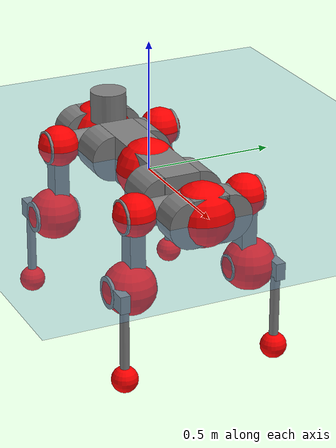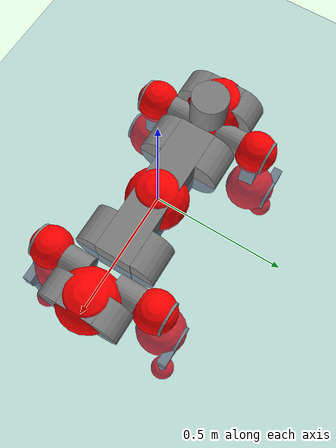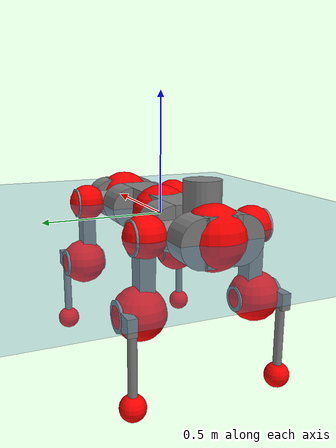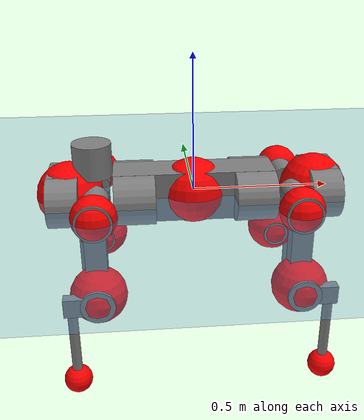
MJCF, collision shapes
<mujoco model="anymal_c">
  <compiler angle="radian" assetdir="assets" balanceinertia="true" inertiafromgeom="false"/>

  <option timestep="0.005" density="1.2" viscosity="2e-05"/>

  <size nkey="1"/>

  <visual>
    <quality shadowsize="8192"/>
    <map shadowclip="0.5"/>
  </visual>

  <default>
    <default class="/">
      <material specular="0" shininess="0.25"/>
      <geom contype="0" conaffinity="0" group="1" solref="-1000 -80"/>
      <site size="0.01 0.005 0.005" group="5"/>
      <general forcelimited="true" forcerange="-80 80" biastype="affine" gainprm="80" biasprm="0 -80 -2"/>
      <default class="anymal_c">
        <joint armature="0.01" damping="0.01" frictionloss="0.1"/>
        <default class="visual">
          <geom type="mesh" group="2"/>
          <default class="visual_zflip"/>
        </default>
        <default class="collision">
          <geom type="cylinder" group="3"/>
          <default class="foot">
            <geom size="0.03 0 0" type="sphere" condim="6" priority="1" friction="0.8 0.02 0.01" solimp="0.015 1 0.03"/>
          </default>
        </default>
      </default>
      <default class="reward_collision_sphere">
        <geom group="5" rgba="1 0 0 1"/>
      </default>
    </default>
  </default>

  <asset>
    <texture type="skybox" colorspace="auto" name="//unnamed_texture_0" builtin="gradient" rgb1="0.95 0.95 0.95" rgb2="0.95 0.95 0.95" width="100" height="600"/>
    <texture type="2d" colorspace="auto" name="texplane" builtin="checker" rgb1="0.345 0.575 0.748" rgb2="0.345 0.575 0.748" markrgb="1 1 1" width="512" height="512"/>
    <texture type="2d" colorspace="linear" name="base" file="base.png"/>
    <texture type="2d" colorspace="linear" name="top_shell" file="top_shell.png"/>
    <texture type="2d" colorspace="linear" name="bottom_shell" file="bottom_shell.png"/>
    <texture type="2d" colorspace="linear" name="remote" file="remote.png"/>
    <texture type="2d" colorspace="linear" name="hatch" file="hatch.png"/>
    <texture type="2d" colorspace="linear" name="handle" file="handle.png"/>
    <texture type="2d" colorspace="linear" name="face" file="face.png"/>
    <texture type="2d" colorspace="linear" name="battery" file="battery.png"/>
    <texture type="2d" colorspace="linear" name="lidar_cage" file="lidar_cage.png"/>
    <texture type="2d" colorspace="linear" name="depth_camera" file="depth_camera.png"/>
    <texture type="2d" colorspace="linear" name="wide_angle_camera" file="wide_angle_camera.png"/>
    <texture type="2d" colorspace="linear" name="lidar" file="lidar.png"/>
    <texture type="2d" colorspace="linear" name="drive" file="drive.png"/>
    <texture type="2d" colorspace="linear" name="hip_l" file="hip_l.png"/>
    <texture type="2d" colorspace="linear" name="shank_l" file="shank_l.png"/>
    <texture type="2d" colorspace="linear" name="foot" file="foot.png"/>
    <texture type="2d" colorspace="linear" name="thigh" file="thigh.png"/>
    <texture type="2d" colorspace="linear" name="shank_r" file="shank_r.png"/>
    <texture type="2d" colorspace="linear" name="hip_r" file="hip_r.png"/>
    <material name="MatPlane" class="/" texture="texplane" texuniform="true" texrepeat="2 2" specular="0.9" shininess="0.5"/>
    <material name="black_plastic" class="/" rgba="0.007 0.007 0.007 1"/>
    <material name="green" class="/" rgba="0.052 0.178 0.033 1"/>
    <material name="red" class="/" rgba="0.178 0.006 0.005 1"/>
    <material name="yellow" class="/" rgba="0.178 0.119 0.006 1"/>
    <material name="lwl" class="/" rgba="0.8 0.8 0.8 1"/>
    <material name="base" class="/" texture="base"/>
    <material name="top_shell" class="/" texture="top_shell"/>
    <material name="bottom_shell" class="/" texture="bottom_shell"/>
    <material name="hip_l" class="/" texture="hip_l"/>
    <material name="thigh" class="/" texture="thigh"/>
    <material name="shank_l" class="/" texture="shank_l"/>
    <material name="foot" class="/" texture="foot"/>
    <material name="hip_r" class="/" texture="hip_r"/>
    <material name="shank" class="/" texture="shank_r"/>
    <material name="hatch" class="/" texture="hatch"/>
    <material name="remote" class="/" texture="remote"/>
    <material name="handle" class="/" texture="handle"/>
    <material name="face" class="/" texture="face"/>
    <material name="depth_camera" class="/" texture="depth_camera"/>
    <material name="wide_angle_camera" class="/" texture="wide_angle_camera"/>
    <material name="battery" class="/" texture="battery"/>
    <material name="lidar_cage" class="/" texture="lidar_cage"/>
    <material name="lidar" class="/" texture="lidar"/>
    <material name="drive" class="/" texture="drive"/>
    <mesh name="base_0" class="/" file="base_0.obj"/>
    <mesh name="base_1" class="/" file="base_1.obj"/>
    <mesh name="base_2" class="/" file="base_2.obj"/>
    <mesh name="base_3" class="/" file="base_3.obj"/>
    <mesh name="base_4" class="/" file="base_4.obj"/>
    <mesh name="base_5" class="/" file="base_5.obj"/>
    <mesh name="top_shell" class="/" file="top_shell.obj"/>
    <mesh name="bottom_shell" class="/" file="bottom_shell.obj"/>
    <mesh name="remote" class="/" file="remote.obj"/>
    <mesh name="handle" class="/" file="handle.obj"/>
    <mesh name="face" class="/" file="face.obj"/>
    <mesh name="wide_angle_camera" class="/" file="wide_angle_camera.obj"/>
    <mesh name="depth_camera" class="/" file="depth_camera.obj"/>
    <mesh name="battery" class="/" file="battery.obj"/>
    <mesh name="lidar_cage" class="/" file="lidar_cage.obj"/>
    <mesh name="lidar" class="/" file="lidar.obj"/>
    <mesh name="drive" class="/" file="drive.obj"/>
    <mesh name="hip_l" class="/" file="hip_l.obj"/>
    <mesh name="thigh" class="/" file="thigh.obj"/>
    <mesh name="shank_l" class="/" file="shank_l.obj"/>
    <mesh name="foot" class="/" file="foot.obj"/>
    <mesh name="hip_r" class="/" file="hip_r.obj"/>
    <mesh name="hatch" class="/" file="hatch.obj"/>
    <mesh name="shank_r" class="/" file="shank_r.obj"/>
  </asset>

  <worldbody>
    <geom name="floor" class="/" size="100 100 0.125" type="plane" group="0" material="MatPlane"/>
    <light name="toplight_shadow" class="/" pos="0 0 5" dir="0.0990148 0.0990148 -0.990148" type="directional" ambient="0.04 0.04 0.04" diffuse="0.55 0.55 0.55" specular="0.12 0.12 0.12"/>
    <light name="toplight_fill" class="/" pos="0 0 5" dir="0.0990148 0.0990148 -0.990148" type="directional" castshadow="false" ambient="0.04 0.04 0.04" diffuse="0.3 0.3 0.3" specular="0.08 0.08 0.08"/>
    <body name="trunk" childclass="anymal_c" pos="0.000293648 -0.00272037 -0.00178429" quat="0.999999 0.000828207 2.01766e-05 0.00107156">
      <inertial pos="-0.000590248 -0.000433818 0.0509611" quat="0.498406 0.491956 0.51097 0.498479" mass="20.1547" diaginertia="0.625528 0.754858 0.212454"/>
      <joint name="//unnamed_joint_0" type="free" armature="0" damping="0" frictionloss="0"/>
      <geom name="//unnamed_geom_1" class="visual" material="green" mesh="base_0"/>
      <geom name="//unnamed_geom_2" class="visual" material="yellow" mesh="base_1"/>
      <geom name="//unnamed_geom_3" class="visual" material="red" mesh="base_2"/>
      <geom name="//unnamed_geom_4" class="visual" material="black_plastic" mesh="base_3"/>
      <geom name="//unnamed_geom_5" class="visual" material="lwl" mesh="base_4"/>
      <geom name="//unnamed_geom_6" class="visual" material="base" mesh="base_5"/>
      <geom name="trunk_1" class="collision" size="0.292262 0.0705461 0.0907021" type="box"/>
      <geom name="trunk_2" class="collision" size="0.0907021 0.0730656" pos="0.216878 0.0724766 0" quat="0.707107 0 0.707107 0"/>
      <geom name="trunk_3" class="collision" size="0.0907021 0.0730656" pos="-0.216878 0.0724766 0" quat="0.707107 0 0.707107 0"/>
      <geom name="trunk_4" class="collision" size="0.0907021 0.0730656" pos="0.216878 -0.0724766 0" quat="0.707107 0 0.707107 0"/>
      <geom name="trunk_5" class="collision" size="0.0907021 0.0730656" pos="-0.216878 -0.0724766 0" quat="0.707107 0 0.707107 0"/>
      <geom name="//unnamed_geom_12" class="visual" material="top_shell" mesh="top_shell"/>
      <geom name="//unnamed_geom_13" class="visual" material="bottom_shell" mesh="bottom_shell"/>
      <geom name="//unnamed_geom_14" class="visual" material="remote" mesh="remote"/>
      <geom name="//unnamed_geom_15" class="visual" material="handle" mesh="handle"/>
      <geom name="//unnamed_geom_16" class="visual" pos="0.413315 0 0" quat="1 0 0 0" material="face" mesh="face"/>
      <geom name="trunk_6" class="collision" size="0.0554291 0.0705461 0.0907021" pos="0.468157 0 0" type="box"/>
      <geom name="//unnamed_geom_18" class="collision" size="0.0907021 0.0554291" pos="0.468157 0.0724766 0" quat="0.707107 0 0.707107 0"/>
      <geom name="//unnamed_geom_19" class="collision" size="0.0907021 0.0554291" pos="0.468157 -0.0724766 0" quat="0.707107 0 0.707107 0"/>
      <geom name="//unnamed_geom_20" class="visual" pos="0.46033 0 -0.0288863" quat="0.965926 0 0.258819 0" material="depth_camera" mesh="depth_camera"/>
      <geom name="//unnamed_geom_21" class="visual" pos="0.511533 0 0.0148335" material="wide_angle_camera" mesh="wide_angle_camera"/>
      <geom name="//unnamed_geom_22" class="visual_zflip" pos="-0.413315 0 0" quat="0 0 0 1" material="face" mesh="face"/>
      <geom name="trunk_7" class="collision" size="0.0554291 0.0705461 0.0907021" pos="-0.468157 0 0" quat="0 0 0 1" type="box"/>
      <geom name="//unnamed_geom_24" class="collision" size="0.0907021 0.0554291" pos="-0.468157 -0.0724766 0" quat="0 -0.707107 0 0.707107"/>
      <geom name="//unnamed_geom_25" class="collision" size="0.0907021 0.0554291" pos="-0.468157 0.0724766 0" quat="0 -0.707107 0 0.707107"/>
      <geom name="//unnamed_geom_26" class="visual" pos="-0.46033 0 -0.0288863" quat="0 -0.258819 0 0.965926" material="depth_camera" mesh="depth_camera"/>
      <geom name="//unnamed_geom_27" class="visual_zflip" pos="-0.511533 0 0.0148335" quat="0 0 0 1" material="wide_angle_camera" mesh="wide_angle_camera"/>
      <geom name="//unnamed_geom_28" class="visual" material="battery" mesh="battery"/>
      <geom name="//unnamed_geom_29" class="visual" pos="0 0.0796667 0.0288327" quat="0.683013 -0.183013 0.183013 0.683013" material="depth_camera" mesh="depth_camera"/>
      <geom name="//unnamed_geom_30" class="visual" pos="0 -0.0796667 0.0288327" quat="0.683013 0.183013 0.183013 -0.683013" material="depth_camera" mesh="depth_camera"/>
      <geom name="//unnamed_geom_31" class="visual" pos="-0.362959 0 0.07283" quat="1 0 0 0" material="lidar_cage" mesh="lidar_cage"/>
      <geom name="trunk_8" class="collision" size="0.0705461 0.0604681" pos="-0.362959 0 0.132283"/>
      <geom name="//unnamed_geom_33" class="visual" pos="-0.362959 1.50236e-05 0.140904" quat="0.707107 0 0 -0.707107" material="lidar" mesh="lidar"/>
      <geom name="//unnamed_geom_34" class="visual" pos="0.299042 0.107664 7.67575e-10" quat="0.258819 0.965926 0 0" material="drive" mesh="drive"/>
      <geom name="//unnamed_geom_35" class="visual" pos="0.299042 -0.107664 -7.67575e-10" quat="0.258819 -0.965926 0 0" material="drive" mesh="drive"/>
      <geom name="//unnamed_geom_36" class="visual" pos="-0.299042 0.107664 -7.67575e-10" quat="0 0 0.965926 -0.258819" material="drive" mesh="drive"/>
      <geom name="//unnamed_geom_37" class="visual" pos="-0.299042 -0.107664 7.67575e-10" quat="0 0 -0.965926 -0.258819" material="drive" mesh="drive"/>
      <geom name="//unnamed_geom_38" class="visual" pos="0.115668 0 0.0723345" quat="1 0 0 0" material="hatch" mesh="hatch"/>
      <geom name="//unnamed_geom_39" class="reward_collision_sphere" size="0.120936"/>
      <geom name="//unnamed_geom_40" class="reward_collision_sphere" size="0.120936" pos="0.448713 0 0"/>
      <geom name="//unnamed_geom_41" class="reward_collision_sphere" size="0.120936" pos="-0.448713 0 0"/>
      <site name="imu" pos="0.251955 0.00351985 0.0407365" size="0.010078"/>
      <camera name="track" pos="0 -2.07076 0" quat="0.707107 0.707107 0 0" mode="trackcom"/>
      <camera name="ego_camera" pos="0.448713 0 -0.0396354" quat="-0.5 -0.5 0.5 0.5"/>
      <body name="LF_HIP" pos="0.298685 0.108594 0.00191007" quat="0.259152 0.965836 -5.86237e-05 -0.00062833">
        <inertial pos="0.0567437 -0.0177287 -0.00768047" quat="-0.126165 0.709942 -0.134986 0.679591" mass="2.845" diaginertia="0.00589334 0.00570167 0.00320754"/>
        <joint name="LF_HAA" pos="0 0 0" axis="0.999896 -0.0139347 0.00382711" stiffness="0.00417198" range="-0.774814 0.482467" armature="0.0105471" damping="0.00447189" frictionloss="0.100327"/>
        <geom name="//unnamed_geom_42" class="visual" pos="0 4.5153e-05 -7.41634e-06" quat="0.258819 -0.965926 0 0" material="hip_l" mesh="hip_l"/>
        <geom name="//unnamed_geom_43" class="visual" pos="0.0597287 -0.0728617 -0.0417376" quat="0.183013 -0.683013 0.683013 0.183013" material="drive" mesh="drive"/>
        <geom name="//unnamed_geom_44" class="collision" size="0.0503901 0.0705461" pos="0.0597287 -0.0123829 -0.00684205" quat="-0.353553 -0.612372 0.612372 -0.353553"/>
        <body name="LF_THIGH" pos="0.0620207 -0.0723927 -0.0395706" quat="0.183013 -0.682957 0.683063 0.183031">
          <inertial pos="0.0310645 0.000231122 -0.243458" quat="0.993511 -0.0161719 -0.0798602 0.0793556" mass="3.25856" diaginertia="0.0292793 0.0358945 0.0040114"/>
          <joint name="LF_HFE" pos="0 0 0" axis="0.999912 -0.0131227 -0.00180681" stiffness="0.0136954" range="-3.19686 3.11698" armature="0.0102524" damping="0.00697168" frictionloss="0.0866024"/>
          <geom name="//unnamed_geom_45" class="visual" pos="-0.000760834 -1.1989e-06 0" quat="0.707107 0 0 -0.707107" material="thigh" mesh="thigh"/>
          <geom name="//unnamed_geom_46" class="collision" size="0.0655071 0.0403121" pos="0.0398856 0 0" quat="0.5 0.5 -0.5 -0.5"/>
          <geom name="//unnamed_geom_47" class="collision" size="0.0377926 0.030234 0.142416" pos="0.0299142 0 -0.140026" quat="0.707107 0 0 -0.707107" type="box"/>
          <geom name="//unnamed_geom_48" class="visual" pos="0.100013 0 -0.282402" quat="1 0 0 0" material="drive" mesh="drive"/>
          <geom name="//unnamed_geom_49" class="collision" size="0.0503901 0.0705461" pos="0.0302134 0 -0.282402" quat="0.707107 0 0.707107 0"/>
          <geom name="//unnamed_geom_50" class="reward_collision_sphere" size="0.0806241" pos="0.0249285 0 0"/>
          <body name="LF_SHANK" pos="0.100248 0.000291812 -0.281713" quat="1 -0.000159956 2.31721e-05 -0.00046217">
            <inertial pos="0.00390014 -0.0661564 -0.0821135" quat="0.993687 -0.107535 0.00101905 -0.0319464" mass="0.596124" diaginertia="0.00965089 0.0107597 0.00104186"/>
            <joint name="LF_KFE" pos="0 0 0" axis="0.999983 0.00568011 -0.00161223" stiffness="0.00900854" range="-3.13644 3.1849" armature="0.00855196" damping="0" frictionloss="0.110494"/>
            <geom name="//unnamed_geom_51" class="visual" pos="-0.000248091 -0.00132284 0" quat="0.707107 0 0 -0.707107" material="shank_l" mesh="shank_l"/>
            <geom name="LF_kfe_act" class="collision" size="0.0604681 0.020156" pos="0.0199428 0 0" quat="0.5 0.5 -0.5 -0.5"/>
            <geom name="//unnamed_geom_53" class="collision" size="0.0579476 0.0340133 0.0191482" pos="0.0199428 -0.0595334 0" quat="0.5 0.5 -0.5 -0.5" type="box"/>
            <geom name="//unnamed_geom_54" class="visual" pos="0.0130127 -0.091488 -0.334889" quat="0.382683 0 0 -0.92388" material="foot" mesh="foot"/>
            <geom name="LF_calf" class="collision" size="0.0176365 0.142354" pos="0.0130127 -0.0910617 -0.167445" quat="0.707107 0 0 -0.707107"/>
            <geom name="LF_foot" class="foot" size="0.0277888" pos="0.0130127 -0.0910617 -0.312594" quat="0.707107 0 0 -0.707107"/>
            <geom name="//unnamed_geom_57" class="reward_collision_sphere" size="0.10078" pos="-0.049857 0 0"/>
            <geom name="//unnamed_geom_58" class="reward_collision_sphere" size="0.0503901" pos="0.0130127 -0.0910617 -0.312594"/>
            <site name="LF_foot" class="foot" pos="0.0130127 -0.0910617 -0.312594" quat="0.707107 0 0 -0.707107" size="0.010078"/>
          </body>
        </body>
      </body>
      <body name="RF_HIP" pos="0.298893 -0.110926 0.00214963" quat="0.258544 -0.965999 -0.000498081 -0.000415166">
        <inertial pos="0.0569897 0.0188238 -0.0107494" quat="0.133404 0.674935 0.125657 0.714757" mass="2.74932" diaginertia="0.00555827 0.00586393 0.00320878"/>
        <joint name="RF_HAA" pos="0 0 0" axis="0.999873 -0.0146431 -0.00631896" stiffness="0.000984257" range="-0.510489 0.757231" armature="0.0087812" damping="0.0017168" frictionloss="0.108527"/>
        <geom name="//unnamed_geom_59" class="visual" pos="0 -4.51526e-05 -7.41632e-06" quat="0.258819 0.965926 0 0" material="hip_r" mesh="hip_r"/>
        <geom name="//unnamed_geom_60" class="visual" pos="0.0597287 0.0728617 -0.0417376" quat="0.183013 0.683013 0.683013 -0.183013" material="drive" mesh="drive"/>
        <geom name="//unnamed_geom_61" class="collision" size="0.0503901 0.0705461" pos="0.0597287 0.0123829 -0.00684205" quat="-0.353553 0.612372 0.612372 0.353553"/>
        <body name="RF_THIGH" pos="0.0576153 0.0730637 -0.0419992" quat="0.18286 0.682992 0.68322 -0.182468">
          <inertial pos="0.0335841 -0.00284865 -0.242276" quat="0.992314 -0.0072681 -0.0755135 0.0977614" mass="3.19512" diaginertia="0.0287098 0.035515 0.0039906"/>
          <joint name="RF_HFE" pos="0 0 0" axis="0.999958 -0.00805154 -0.00437309" range="-3.12999 3.18149" armature="0.00940219" damping="0.0180055" frictionloss="0.0866623"/>
          <geom name="//unnamed_geom_62" class="visual" pos="-0.000760834 -1.1989e-06 0" quat="0.707107 0 0 -0.707107" material="thigh" mesh="thigh"/>
          <geom name="//unnamed_geom_63" class="collision" size="0.0655071 0.0403121" pos="0.0398856 0 0" quat="0.5 0.5 0.5 0.5"/>
          <geom name="//unnamed_geom_64" class="collision" size="0.0377926 0.030234 0.142416" pos="0.0299142 0 -0.140026" quat="0.707107 0 0 0.707107" type="box"/>
          <geom name="//unnamed_geom_65" class="visual" pos="0.100013 0 -0.282402" quat="1 0 0 0" material="drive" mesh="drive"/>
          <geom name="//unnamed_geom_66" class="collision" size="0.0503901 0.0705461" pos="0.0302134 0 -0.282402" quat="0.707107 0 0.707107 0"/>
          <geom name="//unnamed_geom_67" class="reward_collision_sphere" size="0.0806241" pos="0.0249285 0 0"/>
          <body name="RF_SHANK" pos="0.0978357 0.00266974 -0.282183" quat="1 -0.00031111 -0.000137163 -0.000101515">
            <inertial pos="0.00278222 0.0661612 -0.0807442" quat="0.993365 0.110037 -0.0100471 0.0318929" mass="0.603579" diaginertia="0.00975849 0.0113906 0.00103506"/>
            <joint name="RF_KFE" pos="0 0 0" axis="0.999999 0.000436357 -0.00157348" range="-3.08624 3.16365" armature="0.0101449" damping="0.00514524" frictionloss="0.08956"/>
            <geom name="//unnamed_geom_68" class="visual" pos="-0.00024809 0.00132283 0" quat="0.707107 0 0 0.707107" material="shank" mesh="shank_r"/>
            <geom name="RF_kfe_act" class="collision" size="0.0604681 0.020156" pos="0.0199428 0 0" quat="0.5 0.5 0.5 0.5"/>
            <geom name="//unnamed_geom_70" class="collision" size="0.0579476 0.0340133 0.0191482" pos="0.0199428 0.0595334 0" quat="0.5 0.5 0.5 0.5" type="box"/>
            <geom name="//unnamed_geom_71" class="visual" pos="0.0130126 0.091488 -0.334889" quat="0.382683 0 0 0.92388" material="foot" mesh="foot"/>
            <geom name="RF_calf" class="collision" size="0.0176365 0.142354" pos="0.0130127 0.0910617 -0.167445" quat="0.707107 0 0 0.707107"/>
            <geom name="RF_foot" class="foot" size="0.0306374" pos="0.0130127 0.0910617 -0.312594" quat="0.707107 0 0 0.707107"/>
            <geom name="//unnamed_geom_74" class="reward_collision_sphere" size="0.10078" pos="-0.049857 0 0"/>
            <geom name="//unnamed_geom_75" class="reward_collision_sphere" size="0.0503901" pos="0.0130127 0.0910617 -0.312594"/>
            <site name="RF_foot" class="foot" pos="0.0130127 0.0910617 -0.312594" quat="0.707107 0 0 0.707107" size="0.010078"/>
          </body>
        </body>
      </body>
      <body name="LH_HIP" pos="-0.298568 0.110948 0.00341802" quat="0.000577161 0.000287046 0.965895 -0.258934">
        <inertial pos="0.0571614 0.0146343 -0.00552992" quat="0.131559 0.678579 0.13099 0.710679" mass="2.76017" diaginertia="0.00557081 0.00548564 0.00315794"/>
        <joint name="LH_HAA" pos="0 0 0" axis="0.99995 -0.00888819 -0.00456819" stiffness="0.00485892" range="-0.454071 0.682145" armature="0.00962998" damping="0.0134485" frictionloss="0.112717"/>
        <geom name="//unnamed_geom_76" class="visual" pos="0 -4.51526e-05 -7.41632e-06" quat="-0.258819 -0.965926 0 0" material="hip_r" mesh="hip_r"/>
        <geom name="//unnamed_geom_77" class="visual" pos="0.0597287 0.0728617 -0.0417376" quat="0.183013 0.683013 0.683013 -0.183013" material="drive" mesh="drive"/>
        <geom name="//unnamed_geom_78" class="collision" size="0.0503901 0.0705461" pos="0.0597287 0.0123829 -0.00684205" quat="-0.353553 0.612372 0.612372 0.353553"/>
        <body name="LH_THIGH" pos="0.0592697 0.072303 -0.0416086" quat="0.182883 0.682966 0.683226 -0.182521">
          <inertial pos="0.0298511 -0.000288568 -0.241128" quat="0.992098 0.00388306 -0.0801827 0.0964238" mass="3.12913" diaginertia="0.0288405 0.0369172 0.00408535"/>
          <joint name="LH_HFE" pos="0 0 0" axis="1 -0.000272862 9.91786e-05" range="-3.13482 3.16025" armature="0.0114316" damping="0.0215026" frictionloss="0.0865663"/>
          <geom name="//unnamed_geom_79" class="visual" pos="-0.000760834 -1.1989e-06 0" quat="0.707107 0 0 -0.707107" material="thigh" mesh="thigh"/>
          <geom name="//unnamed_geom_80" class="collision" size="0.0655071 0.0403121" pos="0.0398856 0 0" quat="0.5 0.5 -0.5 -0.5"/>
          <geom name="//unnamed_geom_81" class="collision" size="0.0377926 0.030234 0.142416" pos="0.0299142 0 -0.140026" quat="0.707107 0 0 -0.707107" type="box"/>
          <geom name="//unnamed_geom_82" class="visual" pos="0.100013 0 -0.282402" quat="1 0 0 0" material="drive" mesh="drive"/>
          <geom name="//unnamed_geom_83" class="collision" size="0.0503901 0.0705461" pos="0.0302134 0 -0.282402" quat="0.707107 0 0.707107 0"/>
          <geom name="//unnamed_geom_84" class="reward_collision_sphere" size="0.0806241" pos="0.0249285 0 0"/>
          <body name="LH_SHANK" pos="0.0978935 0.000895467 -0.279414" quat="0.999999 -0.000882213 0.000908244 -0.000234264">
            <inertial pos="0.00569319 0.0654033 -0.0789566" quat="0.993506 0.111197 -0.00218254 0.0240155" mass="0.589338" diaginertia="0.00969896 0.0106506 0.00103861"/>
            <joint name="LH_KFE" pos="0 0 0" axis="1 -0.000109834 -6.86471e-05" stiffness="0.00369685" range="-3.1317 3.15005" armature="0.010179" damping="0.0201009" frictionloss="0.0868194"/>
            <geom name="//unnamed_geom_85" class="visual" pos="-0.00024809 0.00132283 0" quat="-0.707107 0 0 -0.707107" material="shank" mesh="shank_r"/>
            <geom name="LH_kfe_act" class="collision" size="0.0604681 0.020156" pos="0.0199428 0 0" quat="0.5 0.5 -0.5 -0.5"/>
            <geom name="//unnamed_geom_87" class="collision" size="0.0579476 0.0340133 0.0191482" pos="0.0199428 0.0595334 0" quat="0.5 0.5 -0.5 -0.5" type="box"/>
            <geom name="//unnamed_geom_88" class="visual" pos="0.0130126 0.091488 -0.334889" quat="-0.382683 0 0 -0.92388" material="foot" mesh="foot"/>
            <geom name="LH_calf" class="collision" size="0.0176365 0.142354" pos="0.0130127 0.0910617 -0.167445" quat="0.707107 0 0 -0.707107"/>
            <geom name="LH_foot" class="foot" size="0.0308513" pos="0.0130127 0.0910617 -0.312594" quat="0.707107 0 0 -0.707107"/>
            <geom name="//unnamed_geom_91" class="reward_collision_sphere" size="0.10078" pos="-0.049857 0 0"/>
            <geom name="//unnamed_geom_92" class="reward_collision_sphere" size="0.0503901" pos="0.0130127 0.0910617 -0.312594"/>
            <site name="LH_foot" class="foot" pos="0.0130127 0.0910617 -0.312594" quat="0.707107 0 0 -0.707107" size="0.010078"/>
          </body>
        </body>
      </body>
      <body name="RH_HIP" pos="-0.299348 -0.105289 0.000412474" quat="8.08037e-06 -3.48457e-07 -0.965922 -0.258833">
        <inertial pos="0.0555143 -0.0176668 -0.00823871" quat="-0.12802 0.709767 -0.135273 0.67937" mass="2.75192" diaginertia="0.00556618 0.00577525 0.00302409"/>
        <joint name="RH_HAA" pos="0 0 0" axis="0.999993 0.000870092 -0.00364087" stiffness="0.00598218" range="-0.737791 0.545656" armature="0.0106981" damping="0.00881363" frictionloss="0.114971"/>
        <geom name="//unnamed_geom_93" class="visual" pos="0 4.5153e-05 -7.41634e-06" quat="-0.258819 0.965926 0 0" material="hip_l" mesh="hip_l"/>
        <geom name="//unnamed_geom_94" class="visual" pos="0.0597287 -0.0728617 -0.0417376" quat="-0.183013 0.683013 -0.683013 -0.183013" material="drive" mesh="drive"/>
        <geom name="//unnamed_geom_95" class="collision" size="0.0503901 0.0705461" pos="0.0597287 -0.0123829 -0.00684205" quat="0.353553 0.612372 -0.612372 0.353553"/>
        <body name="RH_THIGH" pos="0.0568746 -0.0724837 -0.0422431" quat="-0.184033 0.682945 -0.682733 -0.183283">
          <inertial pos="0.031187 -0.00247465 -0.242258" quat="0.993121 -0.00552165 -0.0810421 0.0843397" mass="3.24752" diaginertia="0.0304298 0.0352791 0.00390582"/>
          <joint name="RH_HFE" pos="0 0 0" axis="1 -0.000168961 0.000103214" stiffness="0.00729069" range="-3.16196 3.1416" armature="0.00982807" damping="0.0182637" frictionloss="0.105849"/>
          <geom name="//unnamed_geom_96" class="visual" pos="-0.000760834 -1.1989e-06 0" quat="0.707107 0 0 -0.707107" material="thigh" mesh="thigh"/>
          <geom name="//unnamed_geom_97" class="collision" size="0.0655071 0.0403121" pos="0.0398856 0 0" quat="0.5 0.5 0.5 0.5"/>
          <geom name="//unnamed_geom_98" class="collision" size="0.0377926 0.030234 0.142416" pos="0.0299142 0 -0.140026" quat="0.707107 0 0 0.707107" type="box"/>
          <geom name="//unnamed_geom_99" class="visual" pos="0.100013 0 -0.282402" quat="1 0 0 0" material="drive" mesh="drive"/>
          <geom name="//unnamed_geom_100" class="collision" size="0.0503901 0.0705461" pos="0.0302134 0 -0.282402" quat="0.707107 0 0.707107 0"/>
          <geom name="//unnamed_geom_101" class="reward_collision_sphere" size="0.0806241" pos="0.0249285 0 0"/>
          <body name="RH_SHANK" pos="0.102414 0.000933831 -0.280893" quat="1 4.99968e-05 -0.000165582 3.76413e-05">
            <inertial pos="0.00269582 -0.0631795 -0.0805233" quat="0.992946 -0.115814 -0.000979932 -0.0253886" mass="0.623978" diaginertia="0.0102348 0.0113904 0.00108218"/>
            <joint name="RH_KFE" pos="0 0 0" axis="0.999967 -0.0075133 0.00297934" range="-3.10519 3.18883" armature="0.0103816" damping="0.008813" frictionloss="0.114998"/>
            <geom name="//unnamed_geom_102" class="visual" pos="-0.000248091 -0.00132284 0" quat="0.707107 0 0 -0.707107" material="shank_l" mesh="shank_l"/>
            <geom name="RH_kfe_act" class="collision" size="0.0604681 0.020156" pos="0.0199428 0 0" quat="0.5 0.5 0.5 0.5"/>
            <geom name="//unnamed_geom_104" class="collision" size="0.0579476 0.0340133 0.0191482" pos="0.0199428 -0.0595334 0" quat="0.5 0.5 0.5 0.5" type="box"/>
            <geom name="//unnamed_geom_105" class="visual" pos="0.0130127 -0.091488 -0.334889" quat="0.382683 0 0 -0.92388" material="foot" mesh="foot"/>
            <geom name="RH_calf" class="collision" size="0.0176365 0.142354" pos="0.0130127 -0.0910617 -0.167445" quat="0.707107 0 0 0.707107"/>
            <geom name="RH_foot" class="foot" size="0.0296831" pos="0.0130127 -0.0910617 -0.312594" quat="0.707107 0 0 0.707107"/>
            <geom name="//unnamed_geom_108" class="reward_collision_sphere" size="0.10078" pos="-0.049857 0 0"/>
            <geom name="//unnamed_geom_109" class="reward_collision_sphere" size="0.0503901" pos="0.0130127 -0.0910617 -0.312594"/>
            <site name="RH_foot" class="foot" pos="0.0130127 -0.0910617 -0.312594" quat="0.707107 0 0 0.707107" size="0.010078"/>
          </body>
        </body>
      </body>
    </body>
  </worldbody>

  <contact>
    <pair class="/" geom1="floor" geom2="LF_foot" name="//unnamed_contact_0"/>
    <pair class="/" geom1="floor" geom2="RF_foot" name="//unnamed_contact_1"/>
    <pair class="/" geom1="floor" geom2="LH_foot" name="//unnamed_contact_2"/>
    <pair class="/" geom1="floor" geom2="RH_foot" name="//unnamed_contact_3"/>
  </contact>

  <actuator>
    <general name="LF_HAA" class="/" joint="LF_HAA" forcerange="-90.0014 90.0014" gainprm="81.6414" biasprm="0 -81.6414 -2.21616"/>
    <general name="LF_HFE" class="/" joint="LF_HFE" forcerange="-79.9156 79.9156" gainprm="81.6414" biasprm="0 -81.6414 -2.21616"/>
    <general name="LF_KFE" class="/" joint="LF_KFE" forcerange="-77.7068 77.7068" gainprm="81.6414" biasprm="0 -81.6414 -2.21616"/>
    <general name="RF_HAA" class="/" joint="RF_HAA" forcerange="-72.627 72.627" gainprm="81.6414" biasprm="0 -81.6414 -2.21616"/>
    <general name="RF_HFE" class="/" joint="RF_HFE" forcerange="-80.6502 80.6502" gainprm="81.6414" biasprm="0 -81.6414 -2.21616"/>
    <general name="RF_KFE" class="/" joint="RF_KFE" forcerange="-73.2198 73.2198" gainprm="81.6414" biasprm="0 -81.6414 -2.21616"/>
    <general name="LH_HAA" class="/" joint="LH_HAA" forcerange="-76.6135 76.6135" gainprm="81.6414" biasprm="0 -81.6414 -2.21616"/>
    <general name="LH_HFE" class="/" joint="LH_HFE" forcerange="-79.9633 79.9633" gainprm="81.6414" biasprm="0 -81.6414 -2.21616"/>
    <general name="LH_KFE" class="/" joint="LH_KFE" forcerange="-87.7365 87.7365" gainprm="81.6414" biasprm="0 -81.6414 -2.21616"/>
    <general name="RH_HAA" class="/" joint="RH_HAA" forcerange="-73.2078 73.2078" gainprm="81.6414" biasprm="0 -81.6414 -2.21616"/>
    <general name="RH_HFE" class="/" joint="RH_HFE" forcerange="-88.2451 88.2451" gainprm="81.6414" biasprm="0 -81.6414 -2.21616"/>
    <general name="RH_KFE" class="/" joint="RH_KFE" forcerange="-85.1988 85.1988" gainprm="81.6414" biasprm="0 -81.6414 -2.21616"/>
  </actuator>

  <sensor>
    <gyro site="imu" name="imu_angular_velocity"/>
    <velocimeter site="imu" name="imu_linear_velocity"/>
    <framelinvel objtype="site" objname="LF_foot" name="LF_foot_global_linear_velocity"/>
    <framelinvel objtype="site" objname="RF_foot" name="RF_foot_global_linear_velocity"/>
    <framelinvel objtype="site" objname="LH_foot" name="LH_foot_global_linear_velocity"/>
    <framelinvel objtype="site" objname="RH_foot" name="RH_foot_global_linear_velocity"/>
  </sensor>

  <keyframe>
    <key name="home" qpos="0 0 0.55 1 0 0 0 0 0.4 -0.8 0 -0.4 0.8 0 -0.4 0.8 0 0.4 -0.8"/>
  </keyframe>
</mujoco>
